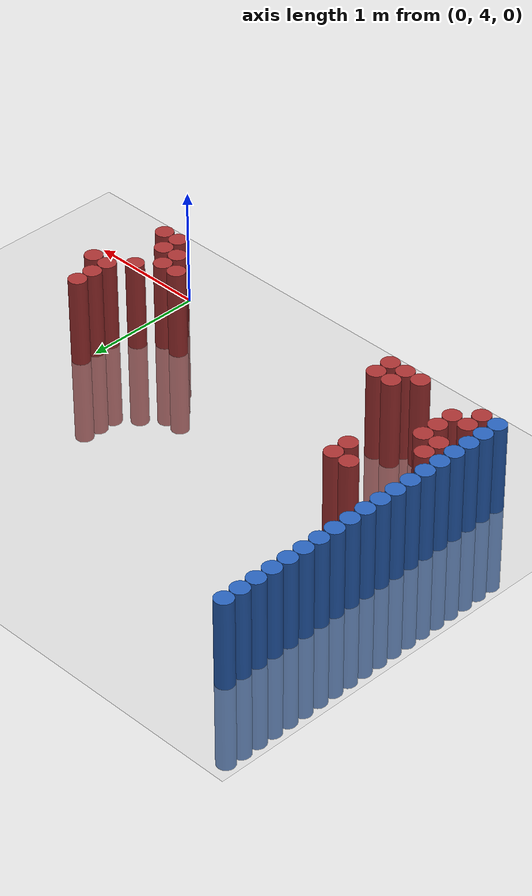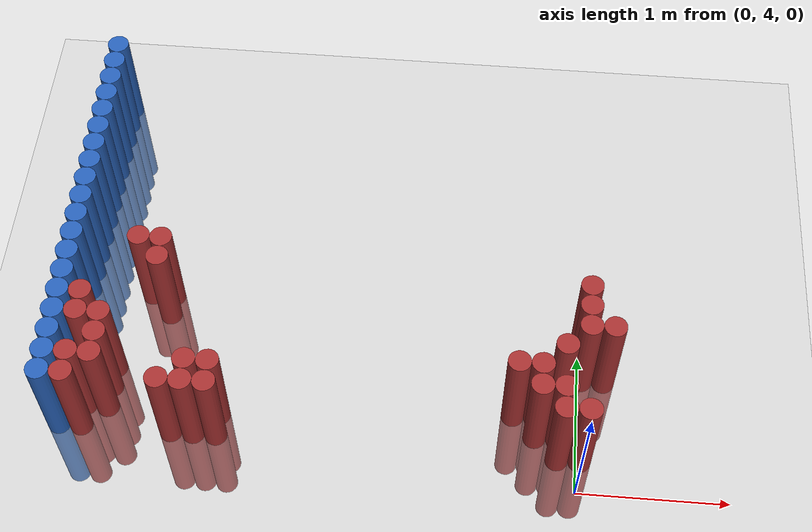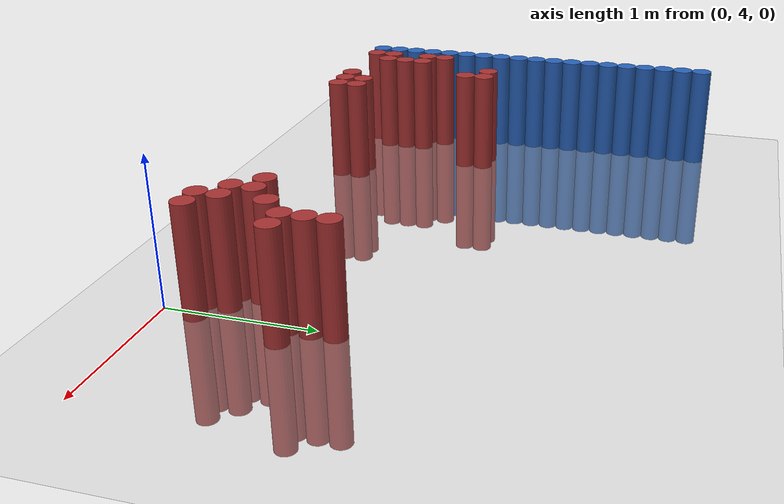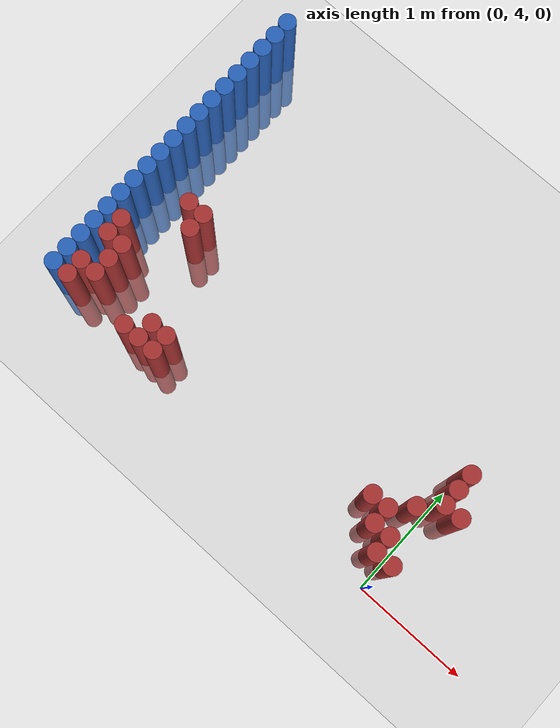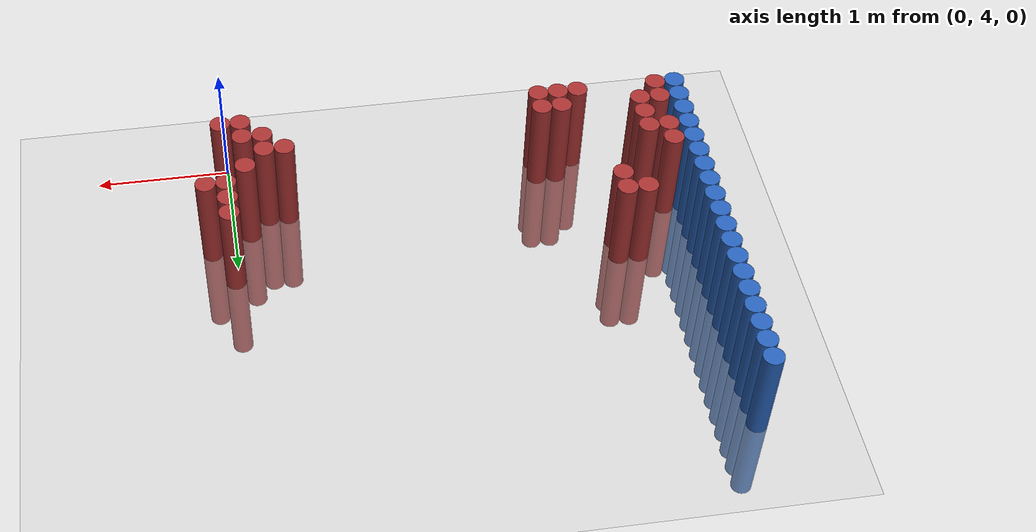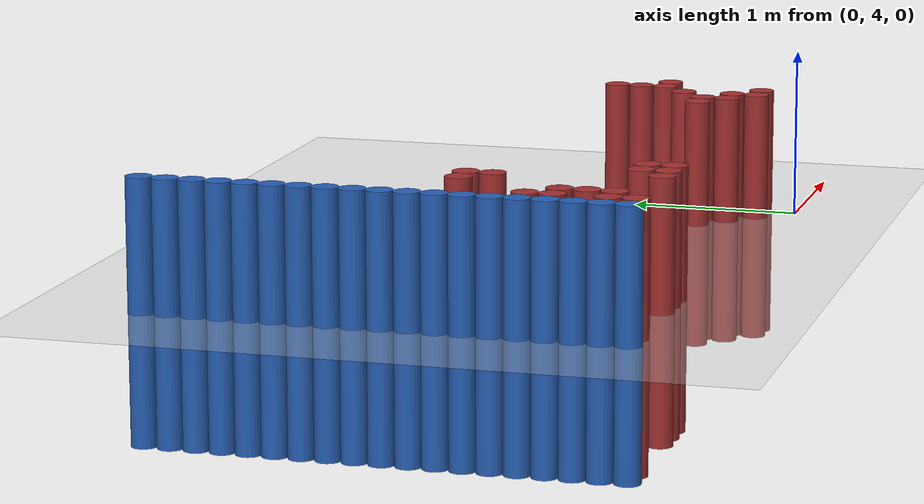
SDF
<sdf version="1.6">
 <world name="default">
  <model name="ground_plane">
   <static>1</static>
   <link name="link">
    <collision name="collision">
     <geometry><plane><normal>0 0 1</normal><size>100 100</size></plane></geometry>
     <surface><friction><ode><mu>100</mu><mu2>50</mu2></ode></friction></surface>
    </collision>
    <visual name="visual">
     <cast_shadows>0</cast_shadows>
     <geometry><plane><normal>0 0 1</normal><size>100 100</size></plane></geometry>
     <material>
      <script><uri>file://media/materials/scripts/gazebo.material</uri><name>Gazebo/Grey</name></script>
     </material>
    </visual>
   </link>
  </model>
  <model name="unit_cylinder_173">
   <static>1</static>
   <pose>-3.425000 4.375000 0.000000 0.000000 0.000000 0.000000</pose>
   <link name="link">
    <inertial>
     <mass>1</mass>
     <inertia><ixx>0.145833</ixx><ixy>0</ixy><ixz>0</ixz><iyy>0.145833</iyy><iyz>0</iyz><izz>0.125</izz></inertia>
    </inertial>
    <collision name="collision">
     <geometry><cylinder><radius>0.075000</radius><length>1.5</length></cylinder></geometry>
    </collision>
    <visual name="visual">
     <geometry><cylinder><radius>0.075000</radius><length>1.5</length></cylinder></geometry>
     <material>
      <ambient>0.152000 0.379000 0.720000 1</ambient>
      <diffuse>0.152000 0.379000 0.720000 1</diffuse>
     </material>
     <material>
      <script><name>Gazebo/Grey</name><uri>file://media/materials/scripts/gazebo.material</uri></script>
     </material>
    </visual>
   </link>
  </model>
  <model name="unit_cylinder_175">
   <static>1</static>
   <pose>-3.425000 4.525000 0.000000 0.000000 0.000000 0.000000</pose>
   <link name="link">
    <inertial>
     <mass>1</mass>
     <inertia><ixx>0.145833</ixx><ixy>0</ixy><ixz>0</ixz><iyy>0.145833</iyy><iyz>0</iyz><izz>0.125</izz></inertia>
    </inertial>
    <collision name="collision">
     <geometry><cylinder><radius>0.075000</radius><length>1.5</length></cylinder></geometry>
    </collision>
    <visual name="visual">
     <geometry><cylinder><radius>0.075000</radius><length>1.5</length></cylinder></geometry>
     <material>
      <ambient>0.152000 0.379000 0.720000 1</ambient>
      <diffuse>0.152000 0.379000 0.720000 1</diffuse>
     </material>
     <material>
      <script><name>Gazebo/Grey</name><uri>file://media/materials/scripts/gazebo.material</uri></script>
     </material>
    </visual>
   </link>
  </model>
  <model name="unit_cylinder_177">
   <static>1</static>
   <pose>-3.425000 4.675000 0.000000 0.000000 0.000000 0.000000</pose>
   <link name="link">
    <inertial>
     <mass>1</mass>
     <inertia><ixx>0.145833</ixx><ixy>0</ixy><ixz>0</ixz><iyy>0.145833</iyy><iyz>0</iyz><izz>0.125</izz></inertia>
    </inertial>
    <collision name="collision">
     <geometry><cylinder><radius>0.075000</radius><length>1.5</length></cylinder></geometry>
    </collision>
    <visual name="visual">
     <geometry><cylinder><radius>0.075000</radius><length>1.5</length></cylinder></geometry>
     <material>
      <ambient>0.152000 0.379000 0.720000 1</ambient>
      <diffuse>0.152000 0.379000 0.720000 1</diffuse>
     </material>
     <material>
      <script><name>Gazebo/Grey</name><uri>file://media/materials/scripts/gazebo.material</uri></script>
     </material>
    </visual>
   </link>
  </model>
  <model name="unit_cylinder_179">
   <static>1</static>
   <pose>-3.425000 4.825000 0.000000 0.000000 0.000000 0.000000</pose>
   <link name="link">
    <inertial>
     <mass>1</mass>
     <inertia><ixx>0.145833</ixx><ixy>0</ixy><ixz>0</ixz><iyy>0.145833</iyy><iyz>0</iyz><izz>0.125</izz></inertia>
    </inertial>
    <collision name="collision">
     <geometry><cylinder><radius>0.075000</radius><length>1.5</length></cylinder></geometry>
    </collision>
    <visual name="visual">
     <geometry><cylinder><radius>0.075000</radius><length>1.5</length></cylinder></geometry>
     <material>
      <ambient>0.152000 0.379000 0.720000 1</ambient>
      <diffuse>0.152000 0.379000 0.720000 1</diffuse>
     </material>
     <material>
      <script><name>Gazebo/Grey</name><uri>file://media/materials/scripts/gazebo.material</uri></script>
     </material>
    </visual>
   </link>
  </model>
  <model name="unit_cylinder_181">
   <static>1</static>
   <pose>-3.425000 4.975000 0.000000 0.000000 0.000000 0.000000</pose>
   <link name="link">
    <inertial>
     <mass>1</mass>
     <inertia><ixx>0.145833</ixx><ixy>0</ixy><ixz>0</ixz><iyy>0.145833</iyy><iyz>0</iyz><izz>0.125</izz></inertia>
    </inertial>
    <collision name="collision">
     <geometry><cylinder><radius>0.075000</radius><length>1.5</length></cylinder></geometry>
    </collision>
    <visual name="visual">
     <geometry><cylinder><radius>0.075000</radius><length>1.5</length></cylinder></geometry>
     <material>
      <ambient>0.152000 0.379000 0.720000 1</ambient>
      <diffuse>0.152000 0.379000 0.720000 1</diffuse>
     </material>
     <material>
      <script><name>Gazebo/Grey</name><uri>file://media/materials/scripts/gazebo.material</uri></script>
     </material>
    </visual>
   </link>
  </model>
  <model name="unit_cylinder_183">
   <static>1</static>
   <pose>-3.425000 5.125000 0.000000 0.000000 0.000000 0.000000</pose>
   <link name="link">
    <inertial>
     <mass>1</mass>
     <inertia><ixx>0.145833</ixx><ixy>0</ixy><ixz>0</ixz><iyy>0.145833</iyy><iyz>0</iyz><izz>0.125</izz></inertia>
    </inertial>
    <collision name="collision">
     <geometry><cylinder><radius>0.075000</radius><length>1.5</length></cylinder></geometry>
    </collision>
    <visual name="visual">
     <geometry><cylinder><radius>0.075000</radius><length>1.5</length></cylinder></geometry>
     <material>
      <ambient>0.152000 0.379000 0.720000 1</ambient>
      <diffuse>0.152000 0.379000 0.720000 1</diffuse>
     </material>
     <material>
      <script><name>Gazebo/Grey</name><uri>file://media/materials/scripts/gazebo.material</uri></script>
     </material>
    </visual>
   </link>
  </model>
  <model name="unit_cylinder_185">
   <static>1</static>
   <pose>-3.425000 5.275000 0.000000 0.000000 0.000000 0.000000</pose>
   <link name="link">
    <inertial>
     <mass>1</mass>
     <inertia><ixx>0.145833</ixx><ixy>0</ixy><ixz>0</ixz><iyy>0.145833</iyy><iyz>0</iyz><izz>0.125</izz></inertia>
    </inertial>
    <collision name="collision">
     <geometry><cylinder><radius>0.075000</radius><length>1.5</length></cylinder></geometry>
    </collision>
    <visual name="visual">
     <geometry><cylinder><radius>0.075000</radius><length>1.5</length></cylinder></geometry>
     <material>
      <ambient>0.152000 0.379000 0.720000 1</ambient>
      <diffuse>0.152000 0.379000 0.720000 1</diffuse>
     </material>
     <material>
      <script><name>Gazebo/Grey</name><uri>file://media/materials/scripts/gazebo.material</uri></script>
     </material>
    </visual>
   </link>
  </model>
  <model name="unit_cylinder_187">
   <static>1</static>
   <pose>-3.425000 5.425000 0.000000 0.000000 0.000000 0.000000</pose>
   <link name="link">
    <inertial>
     <mass>1</mass>
     <inertia><ixx>0.145833</ixx><ixy>0</ixy><ixz>0</ixz><iyy>0.145833</iyy><iyz>0</iyz><izz>0.125</izz></inertia>
    </inertial>
    <collision name="collision">
     <geometry><cylinder><radius>0.075000</radius><length>1.5</length></cylinder></geometry>
    </collision>
    <visual name="visual">
     <geometry><cylinder><radius>0.075000</radius><length>1.5</length></cylinder></geometry>
     <material>
      <ambient>0.152000 0.379000 0.720000 1</ambient>
      <diffuse>0.152000 0.379000 0.720000 1</diffuse>
     </material>
     <material>
      <script><name>Gazebo/Grey</name><uri>file://media/materials/scripts/gazebo.material</uri></script>
     </material>
    </visual>
   </link>
  </model>
  <model name="unit_cylinder_189">
   <static>1</static>
   <pose>-3.425000 5.575000 0.000000 0.000000 0.000000 0.000000</pose>
   <link name="link">
    <inertial>
     <mass>1</mass>
     <inertia><ixx>0.145833</ixx><ixy>0</ixy><ixz>0</ixz><iyy>0.145833</iyy><iyz>0</iyz><izz>0.125</izz></inertia>
    </inertial>
    <collision name="collision">
     <geometry><cylinder><radius>0.075000</radius><length>1.5</length></cylinder></geometry>
    </collision>
    <visual name="visual">
     <geometry><cylinder><radius>0.075000</radius><length>1.5</length></cylinder></geometry>
     <material>
      <ambient>0.152000 0.379000 0.720000 1</ambient>
      <diffuse>0.152000 0.379000 0.720000 1</diffuse>
     </material>
     <material>
      <script><name>Gazebo/Grey</name><uri>file://media/materials/scripts/gazebo.material</uri></script>
     </material>
    </visual>
   </link>
  </model>
  <model name="unit_cylinder_191">
   <static>1</static>
   <pose>-3.425000 5.725000 0.000000 0.000000 0.000000 0.000000</pose>
   <link name="link">
    <inertial>
     <mass>1</mass>
     <inertia><ixx>0.145833</ixx><ixy>0</ixy><ixz>0</ixz><iyy>0.145833</iyy><iyz>0</iyz><izz>0.125</izz></inertia>
    </inertial>
    <collision name="collision">
     <geometry><cylinder><radius>0.075000</radius><length>1.5</length></cylinder></geometry>
    </collision>
    <visual name="visual">
     <geometry><cylinder><radius>0.075000</radius><length>1.5</length></cylinder></geometry>
     <material>
      <ambient>0.152000 0.379000 0.720000 1</ambient>
      <diffuse>0.152000 0.379000 0.720000 1</diffuse>
     </material>
     <material>
      <script><name>Gazebo/Grey</name><uri>file://media/materials/scripts/gazebo.material</uri></script>
     </material>
    </visual>
   </link>
  </model>
  <model name="unit_cylinder_193">
   <static>1</static>
   <pose>-3.425000 5.875000 0.000000 0.000000 0.000000 0.000000</pose>
   <link name="link">
    <inertial>
     <mass>1</mass>
     <inertia><ixx>0.145833</ixx><ixy>0</ixy><ixz>0</ixz><iyy>0.145833</iyy><iyz>0</iyz><izz>0.125</izz></inertia>
    </inertial>
    <collision name="collision">
     <geometry><cylinder><radius>0.075000</radius><length>1.5</length></cylinder></geometry>
    </collision>
    <visual name="visual">
     <geometry><cylinder><radius>0.075000</radius><length>1.5</length></cylinder></geometry>
     <material>
      <ambient>0.152000 0.379000 0.720000 1</ambient>
      <diffuse>0.152000 0.379000 0.720000 1</diffuse>
     </material>
     <material>
      <script><name>Gazebo/Grey</name><uri>file://media/materials/scripts/gazebo.material</uri></script>
     </material>
    </visual>
   </link>
  </model>
  <model name="unit_cylinder_195">
   <static>1</static>
   <pose>-3.425000 6.025000 0.000000 0.000000 0.000000 0.000000</pose>
   <link name="link">
    <inertial>
     <mass>1</mass>
     <inertia><ixx>0.145833</ixx><ixy>0</ixy><ixz>0</ixz><iyy>0.145833</iyy><iyz>0</iyz><izz>0.125</izz></inertia>
    </inertial>
    <collision name="collision">
     <geometry><cylinder><radius>0.075000</radius><length>1.5</length></cylinder></geometry>
    </collision>
    <visual name="visual">
     <geometry><cylinder><radius>0.075000</radius><length>1.5</length></cylinder></geometry>
     <material>
      <ambient>0.152000 0.379000 0.720000 1</ambient>
      <diffuse>0.152000 0.379000 0.720000 1</diffuse>
     </material>
     <material>
      <script><name>Gazebo/Grey</name><uri>file://media/materials/scripts/gazebo.material</uri></script>
     </material>
    </visual>
   </link>
  </model>
  <model name="unit_cylinder_197">
   <static>1</static>
   <pose>-3.425000 6.175000 0.000000 0.000000 0.000000 0.000000</pose>
   <link name="link">
    <inertial>
     <mass>1</mass>
     <inertia><ixx>0.145833</ixx><ixy>0</ixy><ixz>0</ixz><iyy>0.145833</iyy><iyz>0</iyz><izz>0.125</izz></inertia>
    </inertial>
    <collision name="collision">
     <geometry><cylinder><radius>0.075000</radius><length>1.5</length></cylinder></geometry>
    </collision>
    <visual name="visual">
     <geometry><cylinder><radius>0.075000</radius><length>1.5</length></cylinder></geometry>
     <material>
      <ambient>0.152000 0.379000 0.720000 1</ambient>
      <diffuse>0.152000 0.379000 0.720000 1</diffuse>
     </material>
     <material>
      <script><name>Gazebo/Grey</name><uri>file://media/materials/scripts/gazebo.material</uri></script>
     </material>
    </visual>
   </link>
  </model>
  <model name="unit_cylinder_199">
   <static>1</static>
   <pose>-3.425000 6.325000 0.000000 0.000000 0.000000 0.000000</pose>
   <link name="link">
    <inertial>
     <mass>1</mass>
     <inertia><ixx>0.145833</ixx><ixy>0</ixy><ixz>0</ixz><iyy>0.145833</iyy><iyz>0</iyz><izz>0.125</izz></inertia>
    </inertial>
    <collision name="collision">
     <geometry><cylinder><radius>0.075000</radius><length>1.5</length></cylinder></geometry>
    </collision>
    <visual name="visual">
     <geometry><cylinder><radius>0.075000</radius><length>1.5</length></cylinder></geometry>
     <material>
      <ambient>0.152000 0.379000 0.720000 1</ambient>
      <diffuse>0.152000 0.379000 0.720000 1</diffuse>
     </material>
     <material>
      <script><name>Gazebo/Grey</name><uri>file://media/materials/scripts/gazebo.material</uri></script>
     </material>
    </visual>
   </link>
  </model>
  <model name="unit_cylinder_201">
   <static>1</static>
   <pose>-3.425000 6.475000 0.000000 0.000000 0.000000 0.000000</pose>
   <link name="link">
    <inertial>
     <mass>1</mass>
     <inertia><ixx>0.145833</ixx><ixy>0</ixy><ixz>0</ixz><iyy>0.145833</iyy><iyz>0</iyz><izz>0.125</izz></inertia>
    </inertial>
    <collision name="collision">
     <geometry><cylinder><radius>0.075000</radius><length>1.5</length></cylinder></geometry>
    </collision>
    <visual name="visual">
     <geometry><cylinder><radius>0.075000</radius><length>1.5</length></cylinder></geometry>
     <material>
      <ambient>0.152000 0.379000 0.720000 1</ambient>
      <diffuse>0.152000 0.379000 0.720000 1</diffuse>
     </material>
     <material>
      <script><name>Gazebo/Grey</name><uri>file://media/materials/scripts/gazebo.material</uri></script>
     </material>
    </visual>
   </link>
  </model>
  <model name="unit_cylinder_203">
   <static>1</static>
   <pose>-3.425000 6.625000 0.000000 0.000000 0.000000 0.000000</pose>
   <link name="link">
    <inertial>
     <mass>1</mass>
     <inertia><ixx>0.145833</ixx><ixy>0</ixy><ixz>0</ixz><iyy>0.145833</iyy><iyz>0</iyz><izz>0.125</izz></inertia>
    </inertial>
    <collision name="collision">
     <geometry><cylinder><radius>0.075000</radius><length>1.5</length></cylinder></geometry>
    </collision>
    <visual name="visual">
     <geometry><cylinder><radius>0.075000</radius><length>1.5</length></cylinder></geometry>
     <material>
      <ambient>0.152000 0.379000 0.720000 1</ambient>
      <diffuse>0.152000 0.379000 0.720000 1</diffuse>
     </material>
     <material>
      <script><name>Gazebo/Grey</name><uri>file://media/materials/scripts/gazebo.material</uri></script>
     </material>
    </visual>
   </link>
  </model>
  <model name="unit_cylinder_205">
   <static>1</static>
   <pose>-3.425000 6.775000 0.000000 0.000000 0.000000 0.000000</pose>
   <link name="link">
    <inertial>
     <mass>1</mass>
     <inertia><ixx>0.145833</ixx><ixy>0</ixy><ixz>0</ixz><iyy>0.145833</iyy><iyz>0</iyz><izz>0.125</izz></inertia>
    </inertial>
    <collision name="collision">
     <geometry><cylinder><radius>0.075000</radius><length>1.5</length></cylinder></geometry>
    </collision>
    <visual name="visual">
     <geometry><cylinder><radius>0.075000</radius><length>1.5</length></cylinder></geometry>
     <material>
      <ambient>0.152000 0.379000 0.720000 1</ambient>
      <diffuse>0.152000 0.379000 0.720000 1</diffuse>
     </material>
     <material>
      <script><name>Gazebo/Grey</name><uri>file://media/materials/scripts/gazebo.material</uri></script>
     </material>
    </visual>
   </link>
  </model>
  <model name="unit_cylinder_207">
   <static>1</static>
   <pose>-3.425000 6.925000 0.000000 0.000000 0.000000 0.000000</pose>
   <link name="link">
    <inertial>
     <mass>1</mass>
     <inertia><ixx>0.145833</ixx><ixy>0</ixy><ixz>0</ixz><iyy>0.145833</iyy><iyz>0</iyz><izz>0.125</izz></inertia>
    </inertial>
    <collision name="collision">
     <geometry><cylinder><radius>0.075000</radius><length>1.5</length></cylinder></geometry>
    </collision>
    <visual name="visual">
     <geometry><cylinder><radius>0.075000</radius><length>1.5</length></cylinder></geometry>
     <material>
      <ambient>0.152000 0.379000 0.720000 1</ambient>
      <diffuse>0.152000 0.379000 0.720000 1</diffuse>
     </material>
     <material>
      <script><name>Gazebo/Grey</name><uri>file://media/materials/scripts/gazebo.material</uri></script>
     </material>
    </visual>
   </link>
  </model>
  <model name="unit_cylinder_249">
   <static>1</static>
   <pose>-3.425000 4.225000 0.000000 0.000000 0.000000 0.000000</pose>
   <link name="link">
    <inertial>
     <mass>1</mass>
     <inertia><ixx>0.145833</ixx><ixy>0</ixy><ixz>0</ixz><iyy>0.145833</iyy><iyz>0</iyz><izz>0.125</izz></inertia>
    </inertial>
    <collision name="collision">
     <geometry><cylinder><radius>0.075000</radius><length>1.5</length></cylinder></geometry>
    </collision>
    <visual name="visual">
     <geometry><cylinder><radius>0.075000</radius><length>1.5</length></cylinder></geometry>
     <material>
      <ambient>0.152000 0.379000 0.720000 1</ambient>
      <diffuse>0.152000 0.379000 0.720000 1</diffuse>
     </material>
     <material>
      <script><name>Gazebo/Grey</name><uri>file://media/materials/scripts/gazebo.material</uri></script>
     </material>
    </visual>
   </link>
  </model>
  <model name="unit_cylinder_250">
   <static>1</static>
   <pose>-3.425000 4.375000 0.000000 0.000000 0.000000 0.000000</pose>
   <link name="link">
    <inertial>
     <mass>1</mass>
     <inertia><ixx>0.145833</ixx><ixy>0</ixy><ixz>0</ixz><iyy>0.145833</iyy><iyz>0</iyz><izz>0.125</izz></inertia>
    </inertial>
    <collision name="collision">
     <geometry><cylinder><radius>0.075000</radius><length>1.5</length></cylinder></geometry>
    </collision>
    <visual name="visual">
     <geometry><cylinder><radius>0.075000</radius><length>1.5</length></cylinder></geometry>
     <material>
      <ambient>0.152000 0.379000 0.720000 1</ambient>
      <diffuse>0.152000 0.379000 0.720000 1</diffuse>
     </material>
     <material>
      <script><name>Gazebo/Grey</name><uri>file://media/materials/scripts/gazebo.material</uri></script>
     </material>
    </visual>
   </link>
  </model>
  <model name="unit_cylinder_251">
   <static>1</static>
   <pose>-3.425000 4.525000 0.000000 0.000000 0.000000 0.000000</pose>
   <link name="link">
    <inertial>
     <mass>1</mass>
     <inertia><ixx>0.145833</ixx><ixy>0</ixy><ixz>0</ixz><iyy>0.145833</iyy><iyz>0</iyz><izz>0.125</izz></inertia>
    </inertial>
    <collision name="collision">
     <geometry><cylinder><radius>0.075000</radius><length>1.5</length></cylinder></geometry>
    </collision>
    <visual name="visual">
     <geometry><cylinder><radius>0.075000</radius><length>1.5</length></cylinder></geometry>
     <material>
      <ambient>0.152000 0.379000 0.720000 1</ambient>
      <diffuse>0.152000 0.379000 0.720000 1</diffuse>
     </material>
     <material>
      <script><name>Gazebo/Grey</name><uri>file://media/materials/scripts/gazebo.material</uri></script>
     </material>
    </visual>
   </link>
  </model>
  <model name="unit_cylinder_252">
   <static>1</static>
   <pose>-3.425000 4.675000 0.000000 0.000000 0.000000 0.000000</pose>
   <link name="link">
    <inertial>
     <mass>1</mass>
     <inertia><ixx>0.145833</ixx><ixy>0</ixy><ixz>0</ixz><iyy>0.145833</iyy><iyz>0</iyz><izz>0.125</izz></inertia>
    </inertial>
    <collision name="collision">
     <geometry><cylinder><radius>0.075000</radius><length>1.5</length></cylinder></geometry>
    </collision>
    <visual name="visual">
     <geometry><cylinder><radius>0.075000</radius><length>1.5</length></cylinder></geometry>
     <material>
      <ambient>0.152000 0.379000 0.720000 1</ambient>
      <diffuse>0.152000 0.379000 0.720000 1</diffuse>
     </material>
     <material>
      <script><name>Gazebo/Grey</name><uri>file://media/materials/scripts/gazebo.material</uri></script>
     </material>
    </visual>
   </link>
  </model>
  <model name="unit_cylinder_253">
   <static>1</static>
   <pose>-3.425000 4.825000 0.000000 0.000000 0.000000 0.000000</pose>
   <link name="link">
    <inertial>
     <mass>1</mass>
     <inertia><ixx>0.145833</ixx><ixy>0</ixy><ixz>0</ixz><iyy>0.145833</iyy><iyz>0</iyz><izz>0.125</izz></inertia>
    </inertial>
    <collision name="collision">
     <geometry><cylinder><radius>0.075000</radius><length>1.5</length></cylinder></geometry>
    </collision>
    <visual name="visual">
     <geometry><cylinder><radius>0.075000</radius><length>1.5</length></cylinder></geometry>
     <material>
      <ambient>0.152000 0.379000 0.720000 1</ambient>
      <diffuse>0.152000 0.379000 0.720000 1</diffuse>
     </material>
     <material>
      <script><name>Gazebo/Grey</name><uri>file://media/materials/scripts/gazebo.material</uri></script>
     </material>
    </visual>
   </link>
  </model>
  <model name="unit_cylinder_254">
   <static>1</static>
   <pose>-3.425000 4.975000 0.000000 0.000000 0.000000 0.000000</pose>
   <link name="link">
    <inertial>
     <mass>1</mass>
     <inertia><ixx>0.145833</ixx><ixy>0</ixy><ixz>0</ixz><iyy>0.145833</iyy><iyz>0</iyz><izz>0.125</izz></inertia>
    </inertial>
    <collision name="collision">
     <geometry><cylinder><radius>0.075000</radius><length>1.5</length></cylinder></geometry>
    </collision>
    <visual name="visual">
     <geometry><cylinder><radius>0.075000</radius><length>1.5</length></cylinder></geometry>
     <material>
      <ambient>0.152000 0.379000 0.720000 1</ambient>
      <diffuse>0.152000 0.379000 0.720000 1</diffuse>
     </material>
     <material>
      <script><name>Gazebo/Grey</name><uri>file://media/materials/scripts/gazebo.material</uri></script>
     </material>
    </visual>
   </link>
  </model>
  <model name="unit_cylinder_255">
   <static>1</static>
   <pose>-3.425000 5.125000 0.000000 0.000000 0.000000 0.000000</pose>
   <link name="link">
    <inertial>
     <mass>1</mass>
     <inertia><ixx>0.145833</ixx><ixy>0</ixy><ixz>0</ixz><iyy>0.145833</iyy><iyz>0</iyz><izz>0.125</izz></inertia>
    </inertial>
    <collision name="collision">
     <geometry><cylinder><radius>0.075000</radius><length>1.5</length></cylinder></geometry>
    </collision>
    <visual name="visual">
     <geometry><cylinder><radius>0.075000</radius><length>1.5</length></cylinder></geometry>
     <material>
      <ambient>0.152000 0.379000 0.720000 1</ambient>
      <diffuse>0.152000 0.379000 0.720000 1</diffuse>
     </material>
     <material>
      <script><name>Gazebo/Grey</name><uri>file://media/materials/scripts/gazebo.material</uri></script>
     </material>
    </visual>
   </link>
  </model>
  <model name="unit_cylinder_256">
   <static>1</static>
   <pose>-3.425000 5.275000 0.000000 0.000000 0.000000 0.000000</pose>
   <link name="link">
    <inertial>
     <mass>1</mass>
     <inertia><ixx>0.145833</ixx><ixy>0</ixy><ixz>0</ixz><iyy>0.145833</iyy><iyz>0</iyz><izz>0.125</izz></inertia>
    </inertial>
    <collision name="collision">
     <geometry><cylinder><radius>0.075000</radius><length>1.5</length></cylinder></geometry>
    </collision>
    <visual name="visual">
     <geometry><cylinder><radius>0.075000</radius><length>1.5</length></cylinder></geometry>
     <material>
      <ambient>0.152000 0.379000 0.720000 1</ambient>
      <diffuse>0.152000 0.379000 0.720000 1</diffuse>
     </material>
     <material>
      <script><name>Gazebo/Grey</name><uri>file://media/materials/scripts/gazebo.material</uri></script>
     </material>
    </visual>
   </link>
  </model>
  <model name="unit_cylinder_257">
   <static>1</static>
   <pose>-3.425000 5.425000 0.000000 0.000000 0.000000 0.000000</pose>
   <link name="link">
    <inertial>
     <mass>1</mass>
     <inertia><ixx>0.145833</ixx><ixy>0</ixy><ixz>0</ixz><iyy>0.145833</iyy><iyz>0</iyz><izz>0.125</izz></inertia>
    </inertial>
    <collision name="collision">
     <geometry><cylinder><radius>0.075000</radius><length>1.5</length></cylinder></geometry>
    </collision>
    <visual name="visual">
     <geometry><cylinder><radius>0.075000</radius><length>1.5</length></cylinder></geometry>
     <material>
      <ambient>0.152000 0.379000 0.720000 1</ambient>
      <diffuse>0.152000 0.379000 0.720000 1</diffuse>
     </material>
     <material>
      <script><name>Gazebo/Grey</name><uri>file://media/materials/scripts/gazebo.material</uri></script>
     </material>
    </visual>
   </link>
  </model>
  <model name="unit_cylinder_277">
   <static>1</static>
   <pose>-3.275000 4.225000 0.000000 0.000000 0.000000 0.000000</pose>
   <link name="link">
    <inertial>
     <mass>1</mass>
     <inertia><ixx>0.145833</ixx><ixy>0</ixy><ixz>0</ixz><iyy>0.145833</iyy><iyz>0</iyz><izz>0.125</izz></inertia>
    </inertial>
    <collision name="collision">
     <geometry><cylinder><radius>0.075000</radius><length>1.5</length></cylinder></geometry>
    </collision>
    <visual name="visual">
     <geometry><cylinder><radius>0.075000</radius><length>1.5</length></cylinder></geometry>
     <material>
      <ambient>0.648000 0.192000 0.192000 1</ambient>
      <diffuse>0.648000 0.192000 0.192000 1</diffuse>
     </material>
     <material>
      <script><name>Gazebo/Grey</name><uri>file://media/materials/scripts/gazebo.material</uri></script>
     </material>
    </visual>
   </link>
  </model>
  <model name="unit_cylinder_278">
   <static>1</static>
   <pose>-3.275000 4.375000 0.000000 0.000000 0.000000 0.000000</pose>
   <link name="link">
    <inertial>
     <mass>1</mass>
     <inertia><ixx>0.145833</ixx><ixy>0</ixy><ixz>0</ixz><iyy>0.145833</iyy><iyz>0</iyz><izz>0.125</izz></inertia>
    </inertial>
    <collision name="collision">
     <geometry><cylinder><radius>0.075000</radius><length>1.5</length></cylinder></geometry>
    </collision>
    <visual name="visual">
     <geometry><cylinder><radius>0.075000</radius><length>1.5</length></cylinder></geometry>
     <material>
      <ambient>0.648000 0.192000 0.192000 1</ambient>
      <diffuse>0.648000 0.192000 0.192000 1</diffuse>
     </material>
     <material>
      <script><name>Gazebo/Grey</name><uri>file://media/materials/scripts/gazebo.material</uri></script>
     </material>
    </visual>
   </link>
  </model>
  <model name="unit_cylinder_279">
   <static>1</static>
   <pose>-3.275000 4.675000 0.000000 0.000000 0.000000 0.000000</pose>
   <link name="link">
    <inertial>
     <mass>1</mass>
     <inertia><ixx>0.145833</ixx><ixy>0</ixy><ixz>0</ixz><iyy>0.145833</iyy><iyz>0</iyz><izz>0.125</izz></inertia>
    </inertial>
    <collision name="collision">
     <geometry><cylinder><radius>0.075000</radius><length>1.5</length></cylinder></geometry>
    </collision>
    <visual name="visual">
     <geometry><cylinder><radius>0.075000</radius><length>1.5</length></cylinder></geometry>
     <material>
      <ambient>0.648000 0.192000 0.192000 1</ambient>
      <diffuse>0.648000 0.192000 0.192000 1</diffuse>
     </material>
     <material>
      <script><name>Gazebo/Grey</name><uri>file://media/materials/scripts/gazebo.material</uri></script>
     </material>
    </visual>
   </link>
  </model>
  <model name="unit_cylinder_280">
   <static>1</static>
   <pose>-3.275000 4.825000 0.000000 0.000000 0.000000 0.000000</pose>
   <link name="link">
    <inertial>
     <mass>1</mass>
     <inertia><ixx>0.145833</ixx><ixy>0</ixy><ixz>0</ixz><iyy>0.145833</iyy><iyz>0</iyz><izz>0.125</izz></inertia>
    </inertial>
    <collision name="collision">
     <geometry><cylinder><radius>0.075000</radius><length>1.5</length></cylinder></geometry>
    </collision>
    <visual name="visual">
     <geometry><cylinder><radius>0.075000</radius><length>1.5</length></cylinder></geometry>
     <material>
      <ambient>0.648000 0.192000 0.192000 1</ambient>
      <diffuse>0.648000 0.192000 0.192000 1</diffuse>
     </material>
     <material>
      <script><name>Gazebo/Grey</name><uri>file://media/materials/scripts/gazebo.material</uri></script>
     </material>
    </visual>
   </link>
  </model>
  <model name="unit_cylinder_290">
   <static>1</static>
   <pose>-3.125000 4.375000 0.000000 0.000000 0.000000 0.000000</pose>
   <link name="link">
    <inertial>
     <mass>1</mass>
     <inertia><ixx>0.145833</ixx><ixy>0</ixy><ixz>0</ixz><iyy>0.145833</iyy><iyz>0</iyz><izz>0.125</izz></inertia>
    </inertial>
    <collision name="collision">
     <geometry><cylinder><radius>0.075000</radius><length>1.5</length></cylinder></geometry>
    </collision>
    <visual name="visual">
     <geometry><cylinder><radius>0.075000</radius><length>1.5</length></cylinder></geometry>
     <material>
      <ambient>0.648000 0.192000 0.192000 1</ambient>
      <diffuse>0.648000 0.192000 0.192000 1</diffuse>
     </material>
     <material>
      <script><name>Gazebo/Grey</name><uri>file://media/materials/scripts/gazebo.material</uri></script>
     </material>
    </visual>
   </link>
  </model>
  <model name="unit_cylinder_291">
   <static>1</static>
   <pose>-3.125000 4.525000 0.000000 0.000000 0.000000 0.000000</pose>
   <link name="link">
    <inertial>
     <mass>1</mass>
     <inertia><ixx>0.145833</ixx><ixy>0</ixy><ixz>0</ixz><iyy>0.145833</iyy><iyz>0</iyz><izz>0.125</izz></inertia>
    </inertial>
    <collision name="collision">
     <geometry><cylinder><radius>0.075000</radius><length>1.5</length></cylinder></geometry>
    </collision>
    <visual name="visual">
     <geometry><cylinder><radius>0.075000</radius><length>1.5</length></cylinder></geometry>
     <material>
      <ambient>0.648000 0.192000 0.192000 1</ambient>
      <diffuse>0.648000 0.192000 0.192000 1</diffuse>
     </material>
     <material>
      <script><name>Gazebo/Grey</name><uri>file://media/materials/scripts/gazebo.material</uri></script>
     </material>
    </visual>
   </link>
  </model>
  <model name="unit_cylinder_292">
   <static>1</static>
   <pose>-3.125000 4.675000 0.000000 0.000000 0.000000 0.000000</pose>
   <link name="link">
    <inertial>
     <mass>1</mass>
     <inertia><ixx>0.145833</ixx><ixy>0</ixy><ixz>0</ixz><iyy>0.145833</iyy><iyz>0</iyz><izz>0.125</izz></inertia>
    </inertial>
    <collision name="collision">
     <geometry><cylinder><radius>0.075000</radius><length>1.5</length></cylinder></geometry>
    </collision>
    <visual name="visual">
     <geometry><cylinder><radius>0.075000</radius><length>1.5</length></cylinder></geometry>
     <material>
      <ambient>0.648000 0.192000 0.192000 1</ambient>
      <diffuse>0.648000 0.192000 0.192000 1</diffuse>
     </material>
     <material>
      <script><name>Gazebo/Grey</name><uri>file://media/materials/scripts/gazebo.material</uri></script>
     </material>
    </visual>
   </link>
  </model>
  <model name="unit_cylinder_299">
   <static>1</static>
   <pose>-2.975000 5.275000 0.000000 0.000000 0.000000 0.000000</pose>
   <link name="link">
    <inertial>
     <mass>1</mass>
     <inertia><ixx>0.145833</ixx><ixy>0</ixy><ixz>0</ixz><iyy>0.145833</iyy><iyz>0</iyz><izz>0.125</izz></inertia>
    </inertial>
    <collision name="collision">
     <geometry><cylinder><radius>0.075000</radius><length>1.5</length></cylinder></geometry>
    </collision>
    <visual name="visual">
     <geometry><cylinder><radius>0.075000</radius><length>1.5</length></cylinder></geometry>
     <material>
      <ambient>0.648000 0.192000 0.192000 1</ambient>
      <diffuse>0.648000 0.192000 0.192000 1</diffuse>
     </material>
     <material>
      <script><name>Gazebo/Grey</name><uri>file://media/materials/scripts/gazebo.material</uri></script>
     </material>
    </visual>
   </link>
  </model>
  <model name="unit_cylinder_302">
   <static>1</static>
   <pose>-2.825000 5.125000 0.000000 0.000000 0.000000 0.000000</pose>
   <link name="link">
    <inertial>
     <mass>1</mass>
     <inertia><ixx>0.145833</ixx><ixy>0</ixy><ixz>0</ixz><iyy>0.145833</iyy><iyz>0</iyz><izz>0.125</izz></inertia>
    </inertial>
    <collision name="collision">
     <geometry><cylinder><radius>0.075000</radius><length>1.5</length></cylinder></geometry>
    </collision>
    <visual name="visual">
     <geometry><cylinder><radius>0.075000</radius><length>1.5</length></cylinder></geometry>
     <material>
      <ambient>0.648000 0.192000 0.192000 1</ambient>
      <diffuse>0.648000 0.192000 0.192000 1</diffuse>
     </material>
     <material>
      <script><name>Gazebo/Grey</name><uri>file://media/materials/scripts/gazebo.material</uri></script>
     </material>
    </visual>
   </link>
  </model>
  <model name="unit_cylinder_303">
   <static>1</static>
   <pose>-2.825000 5.275000 0.000000 0.000000 0.000000 0.000000</pose>
   <link name="link">
    <inertial>
     <mass>1</mass>
     <inertia><ixx>0.145833</ixx><ixy>0</ixy><ixz>0</ixz><iyy>0.145833</iyy><iyz>0</iyz><izz>0.125</izz></inertia>
    </inertial>
    <collision name="collision">
     <geometry><cylinder><radius>0.075000</radius><length>1.5</length></cylinder></geometry>
    </collision>
    <visual name="visual">
     <geometry><cylinder><radius>0.075000</radius><length>1.5</length></cylinder></geometry>
     <material>
      <ambient>0.648000 0.192000 0.192000 1</ambient>
      <diffuse>0.648000 0.192000 0.192000 1</diffuse>
     </material>
     <material>
      <script><name>Gazebo/Grey</name><uri>file://media/materials/scripts/gazebo.material</uri></script>
     </material>
    </visual>
   </link>
  </model>
  <model name="unit_cylinder_307">
   <static>1</static>
   <pose>-2.675000 4.225000 0.000000 0.000000 0.000000 0.000000</pose>
   <link name="link">
    <inertial>
     <mass>1</mass>
     <inertia><ixx>0.145833</ixx><ixy>0</ixy><ixz>0</ixz><iyy>0.145833</iyy><iyz>0</iyz><izz>0.125</izz></inertia>
    </inertial>
    <collision name="collision">
     <geometry><cylinder><radius>0.075000</radius><length>1.5</length></cylinder></geometry>
    </collision>
    <visual name="visual">
     <geometry><cylinder><radius>0.075000</radius><length>1.5</length></cylinder></geometry>
     <material>
      <ambient>0.648000 0.192000 0.192000 1</ambient>
      <diffuse>0.648000 0.192000 0.192000 1</diffuse>
     </material>
     <material>
      <script><name>Gazebo/Grey</name><uri>file://media/materials/scripts/gazebo.material</uri></script>
     </material>
    </visual>
   </link>
  </model>
  <model name="unit_cylinder_312">
   <static>1</static>
   <pose>-2.525000 4.225000 0.000000 0.000000 0.000000 0.000000</pose>
   <link name="link">
    <inertial>
     <mass>1</mass>
     <inertia><ixx>0.145833</ixx><ixy>0</ixy><ixz>0</ixz><iyy>0.145833</iyy><iyz>0</iyz><izz>0.125</izz></inertia>
    </inertial>
    <collision name="collision">
     <geometry><cylinder><radius>0.075000</radius><length>1.5</length></cylinder></geometry>
    </collision>
    <visual name="visual">
     <geometry><cylinder><radius>0.075000</radius><length>1.5</length></cylinder></geometry>
     <material>
      <ambient>0.648000 0.192000 0.192000 1</ambient>
      <diffuse>0.648000 0.192000 0.192000 1</diffuse>
     </material>
     <material>
      <script><name>Gazebo/Grey</name><uri>file://media/materials/scripts/gazebo.material</uri></script>
     </material>
    </visual>
   </link>
  </model>
  <model name="unit_cylinder_313">
   <static>1</static>
   <pose>-2.525000 4.375000 0.000000 0.000000 0.000000 0.000000</pose>
   <link name="link">
    <inertial>
     <mass>1</mass>
     <inertia><ixx>0.145833</ixx><ixy>0</ixy><ixz>0</ixz><iyy>0.145833</iyy><iyz>0</iyz><izz>0.125</izz></inertia>
    </inertial>
    <collision name="collision">
     <geometry><cylinder><radius>0.075000</radius><length>1.5</length></cylinder></geometry>
    </collision>
    <visual name="visual">
     <geometry><cylinder><radius>0.075000</radius><length>1.5</length></cylinder></geometry>
     <material>
      <ambient>0.648000 0.192000 0.192000 1</ambient>
      <diffuse>0.648000 0.192000 0.192000 1</diffuse>
     </material>
     <material>
      <script><name>Gazebo/Grey</name><uri>file://media/materials/scripts/gazebo.material</uri></script>
     </material>
    </visual>
   </link>
  </model>
  <model name="unit_cylinder_325">
   <static>1</static>
   <pose>-2.375000 4.225000 0.000000 0.000000 0.000000 0.000000</pose>
   <link name="link">
    <inertial>
     <mass>1</mass>
     <inertia><ixx>0.145833</ixx><ixy>0</ixy><ixz>0</ixz><iyy>0.145833</iyy><iyz>0</iyz><izz>0.125</izz></inertia>
    </inertial>
    <collision name="collision">
     <geometry><cylinder><radius>0.075000</radius><length>1.5</length></cylinder></geometry>
    </collision>
    <visual name="visual">
     <geometry><cylinder><radius>0.075000</radius><length>1.5</length></cylinder></geometry>
     <material>
      <ambient>0.648000 0.192000 0.192000 1</ambient>
      <diffuse>0.648000 0.192000 0.192000 1</diffuse>
     </material>
     <material>
      <script><name>Gazebo/Grey</name><uri>file://media/materials/scripts/gazebo.material</uri></script>
     </material>
    </visual>
   </link>
  </model>
  <model name="unit_cylinder_326">
   <static>1</static>
   <pose>-2.375000 4.375000 0.000000 0.000000 0.000000 0.000000</pose>
   <link name="link">
    <inertial>
     <mass>1</mass>
     <inertia><ixx>0.145833</ixx><ixy>0</ixy><ixz>0</ixz><iyy>0.145833</iyy><iyz>0</iyz><izz>0.125</izz></inertia>
    </inertial>
    <collision name="collision">
     <geometry><cylinder><radius>0.075000</radius><length>1.5</length></cylinder></geometry>
    </collision>
    <visual name="visual">
     <geometry><cylinder><radius>0.075000</radius><length>1.5</length></cylinder></geometry>
     <material>
      <ambient>0.648000 0.192000 0.192000 1</ambient>
      <diffuse>0.648000 0.192000 0.192000 1</diffuse>
     </material>
     <material>
      <script><name>Gazebo/Grey</name><uri>file://media/materials/scripts/gazebo.material</uri></script>
     </material>
    </visual>
   </link>
  </model>
  <model name="unit_cylinder_355">
   <static>1</static>
   <pose>-0.425000 4.525000 0.000000 0.000000 0.000000 0.000000</pose>
   <link name="link">
    <inertial>
     <mass>1</mass>
     <inertia><ixx>0.145833</ixx><ixy>0</ixy><ixz>0</ixz><iyy>0.145833</iyy><iyz>0</iyz><izz>0.125</izz></inertia>
    </inertial>
    <collision name="collision">
     <geometry><cylinder><radius>0.075000</radius><length>1.5</length></cylinder></geometry>
    </collision>
    <visual name="visual">
     <geometry><cylinder><radius>0.075000</radius><length>1.5</length></cylinder></geometry>
     <material>
      <ambient>0.648000 0.192000 0.192000 1</ambient>
      <diffuse>0.648000 0.192000 0.192000 1</diffuse>
     </material>
     <material>
      <script><name>Gazebo/Grey</name><uri>file://media/materials/scripts/gazebo.material</uri></script>
     </material>
    </visual>
   </link>
  </model>
  <model name="unit_cylinder_360">
   <static>1</static>
   <pose>-0.275000 4.375000 0.000000 0.000000 0.000000 0.000000</pose>
   <link name="link">
    <inertial>
     <mass>1</mass>
     <inertia><ixx>0.145833</ixx><ixy>0</ixy><ixz>0</ixz><iyy>0.145833</iyy><iyz>0</iyz><izz>0.125</izz></inertia>
    </inertial>
    <collision name="collision">
     <geometry><cylinder><radius>0.075000</radius><length>1.5</length></cylinder></geometry>
    </collision>
    <visual name="visual">
     <geometry><cylinder><radius>0.075000</radius><length>1.5</length></cylinder></geometry>
     <material>
      <ambient>0.648000 0.192000 0.192000 1</ambient>
      <diffuse>0.648000 0.192000 0.192000 1</diffuse>
     </material>
     <material>
      <script><name>Gazebo/Grey</name><uri>file://media/materials/scripts/gazebo.material</uri></script>
     </material>
    </visual>
   </link>
  </model>
  <model name="unit_cylinder_361">
   <static>1</static>
   <pose>-0.275000 4.525000 0.000000 0.000000 0.000000 0.000000</pose>
   <link name="link">
    <inertial>
     <mass>1</mass>
     <inertia><ixx>0.145833</ixx><ixy>0</ixy><ixz>0</ixz><iyy>0.145833</iyy><iyz>0</iyz><izz>0.125</izz></inertia>
    </inertial>
    <collision name="collision">
     <geometry><cylinder><radius>0.075000</radius><length>1.5</length></cylinder></geometry>
    </collision>
    <visual name="visual">
     <geometry><cylinder><radius>0.075000</radius><length>1.5</length></cylinder></geometry>
     <material>
      <ambient>0.648000 0.192000 0.192000 1</ambient>
      <diffuse>0.648000 0.192000 0.192000 1</diffuse>
     </material>
     <material>
      <script><name>Gazebo/Grey</name><uri>file://media/materials/scripts/gazebo.material</uri></script>
     </material>
    </visual>
   </link>
  </model>
  <model name="unit_cylinder_362">
   <static>1</static>
   <pose>-0.125000 4.225000 0.000000 0.000000 0.000000 0.000000</pose>
   <link name="link">
    <inertial>
     <mass>1</mass>
     <inertia><ixx>0.145833</ixx><ixy>0</ixy><ixz>0</ixz><iyy>0.145833</iyy><iyz>0</iyz><izz>0.125</izz></inertia>
    </inertial>
    <collision name="collision">
     <geometry><cylinder><radius>0.075000</radius><length>1.5</length></cylinder></geometry>
    </collision>
    <visual name="visual">
     <geometry><cylinder><radius>0.075000</radius><length>1.5</length></cylinder></geometry>
     <material>
      <ambient>0.648000 0.192000 0.192000 1</ambient>
      <diffuse>0.648000 0.192000 0.192000 1</diffuse>
     </material>
     <material>
      <script><name>Gazebo/Grey</name><uri>file://media/materials/scripts/gazebo.material</uri></script>
     </material>
    </visual>
   </link>
  </model>
  <model name="unit_cylinder_363">
   <static>1</static>
   <pose>-0.125000 4.375000 0.000000 0.000000 0.000000 0.000000</pose>
   <link name="link">
    <inertial>
     <mass>1</mass>
     <inertia><ixx>0.145833</ixx><ixy>0</ixy><ixz>0</ixz><iyy>0.145833</iyy><iyz>0</iyz><izz>0.125</izz></inertia>
    </inertial>
    <collision name="collision">
     <geometry><cylinder><radius>0.075000</radius><length>1.5</length></cylinder></geometry>
    </collision>
    <visual name="visual">
     <geometry><cylinder><radius>0.075000</radius><length>1.5</length></cylinder></geometry>
     <material>
      <ambient>0.648000 0.192000 0.192000 1</ambient>
      <diffuse>0.648000 0.192000 0.192000 1</diffuse>
     </material>
     <material>
      <script><name>Gazebo/Grey</name><uri>file://media/materials/scripts/gazebo.material</uri></script>
     </material>
    </visual>
   </link>
  </model>
  <model name="unit_cylinder_364">
   <static>1</static>
   <pose>-0.125000 4.675000 0.000000 0.000000 0.000000 0.000000</pose>
   <link name="link">
    <inertial>
     <mass>1</mass>
     <inertia><ixx>0.145833</ixx><ixy>0</ixy><ixz>0</ixz><iyy>0.145833</iyy><iyz>0</iyz><izz>0.125</izz></inertia>
    </inertial>
    <collision name="collision">
     <geometry><cylinder><radius>0.075000</radius><length>1.5</length></cylinder></geometry>
    </collision>
    <visual name="visual">
     <geometry><cylinder><radius>0.075000</radius><length>1.5</length></cylinder></geometry>
     <material>
      <ambient>0.648000 0.192000 0.192000 1</ambient>
      <diffuse>0.648000 0.192000 0.192000 1</diffuse>
     </material>
     <material>
      <script><name>Gazebo/Grey</name><uri>file://media/materials/scripts/gazebo.material</uri></script>
     </material>
    </visual>
   </link>
  </model>
  <model name="unit_cylinder_368">
   <static>1</static>
   <pose>0.025000 4.225000 0.000000 0.000000 0.000000 0.000000</pose>
   <link name="link">
    <inertial>
     <mass>1</mass>
     <inertia><ixx>0.145833</ixx><ixy>0</ixy><ixz>0</ixz><iyy>0.145833</iyy><iyz>0</iyz><izz>0.125</izz></inertia>
    </inertial>
    <collision name="collision">
     <geometry><cylinder><radius>0.075000</radius><length>1.5</length></cylinder></geometry>
    </collision>
    <visual name="visual">
     <geometry><cylinder><radius>0.075000</radius><length>1.5</length></cylinder></geometry>
     <material>
      <ambient>0.648000 0.192000 0.192000 1</ambient>
      <diffuse>0.648000 0.192000 0.192000 1</diffuse>
     </material>
     <material>
      <script><name>Gazebo/Grey</name><uri>file://media/materials/scripts/gazebo.material</uri></script>
     </material>
    </visual>
   </link>
  </model>
  <model name="unit_cylinder_369">
   <static>1</static>
   <pose>0.025000 4.825000 0.000000 0.000000 0.000000 0.000000</pose>
   <link name="link">
    <inertial>
     <mass>1</mass>
     <inertia><ixx>0.145833</ixx><ixy>0</ixy><ixz>0</ixz><iyy>0.145833</iyy><iyz>0</iyz><izz>0.125</izz></inertia>
    </inertial>
    <collision name="collision">
     <geometry><cylinder><radius>0.075000</radius><length>1.5</length></cylinder></geometry>
    </collision>
    <visual name="visual">
     <geometry><cylinder><radius>0.075000</radius><length>1.5</length></cylinder></geometry>
     <material>
      <ambient>0.648000 0.192000 0.192000 1</ambient>
      <diffuse>0.648000 0.192000 0.192000 1</diffuse>
     </material>
     <material>
      <script><name>Gazebo/Grey</name><uri>file://media/materials/scripts/gazebo.material</uri></script>
     </material>
    </visual>
   </link>
  </model>
  <model name="unit_cylinder_370">
   <static>1</static>
   <pose>0.025000 4.975000 0.000000 0.000000 0.000000 0.000000</pose>
   <link name="link">
    <inertial>
     <mass>1</mass>
     <inertia><ixx>0.145833</ixx><ixy>0</ixy><ixz>0</ixz><iyy>0.145833</iyy><iyz>0</iyz><izz>0.125</izz></inertia>
    </inertial>
    <collision name="collision">
     <geometry><cylinder><radius>0.075000</radius><length>1.5</length></cylinder></geometry>
    </collision>
    <visual name="visual">
     <geometry><cylinder><radius>0.075000</radius><length>1.5</length></cylinder></geometry>
     <material>
      <ambient>0.648000 0.192000 0.192000 1</ambient>
      <diffuse>0.648000 0.192000 0.192000 1</diffuse>
     </material>
     <material>
      <script><name>Gazebo/Grey</name><uri>file://media/materials/scripts/gazebo.material</uri></script>
     </material>
    </visual>
   </link>
  </model>
  <model name="unit_cylinder_371">
   <static>1</static>
   <pose>0.025000 5.125000 0.000000 0.000000 0.000000 0.000000</pose>
   <link name="link">
    <inertial>
     <mass>1</mass>
     <inertia><ixx>0.145833</ixx><ixy>0</ixy><ixz>0</ixz><iyy>0.145833</iyy><iyz>0</iyz><izz>0.125</izz></inertia>
    </inertial>
    <collision name="collision">
     <geometry><cylinder><radius>0.075000</radius><length>1.5</length></cylinder></geometry>
    </collision>
    <visual name="visual">
     <geometry><cylinder><radius>0.075000</radius><length>1.5</length></cylinder></geometry>
     <material>
      <ambient>0.648000 0.192000 0.192000 1</ambient>
      <diffuse>0.648000 0.192000 0.192000 1</diffuse>
     </material>
     <material>
      <script><name>Gazebo/Grey</name><uri>file://media/materials/scripts/gazebo.material</uri></script>
     </material>
    </visual>
   </link>
  </model>
  <model name="unit_cylinder_376">
   <static>1</static>
   <pose>0.175000 4.825000 0.000000 0.000000 0.000000 0.000000</pose>
   <link name="link">
    <inertial>
     <mass>1</mass>
     <inertia><ixx>0.145833</ixx><ixy>0</ixy><ixz>0</ixz><iyy>0.145833</iyy><iyz>0</iyz><izz>0.125</izz></inertia>
    </inertial>
    <collision name="collision">
     <geometry><cylinder><radius>0.075000</radius><length>1.5</length></cylinder></geometry>
    </collision>
    <visual name="visual">
     <geometry><cylinder><radius>0.075000</radius><length>1.5</length></cylinder></geometry>
     <material>
      <ambient>0.648000 0.192000 0.192000 1</ambient>
      <diffuse>0.648000 0.192000 0.192000 1</diffuse>
     </material>
     <material>
      <script><name>Gazebo/Grey</name><uri>file://media/materials/scripts/gazebo.material</uri></script>
     </material>
    </visual>
   </link>
  </model>
 </world>
</sdf>
